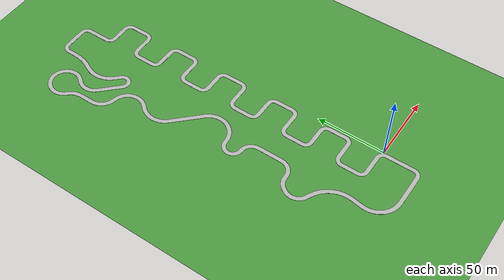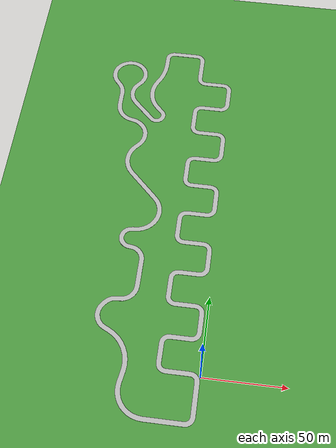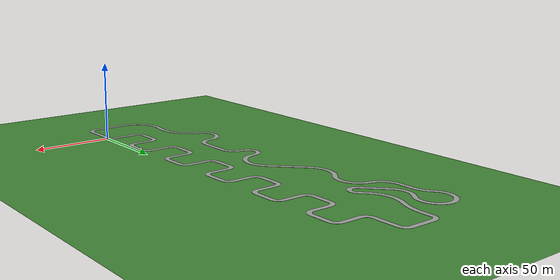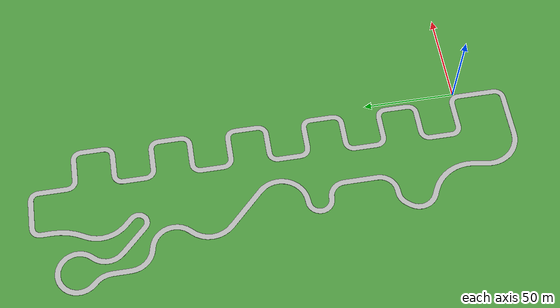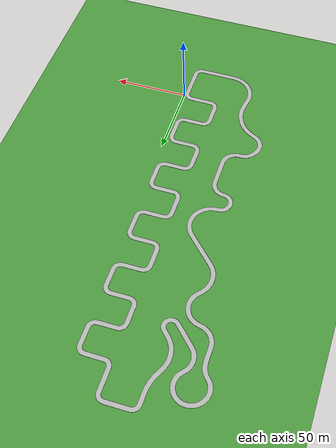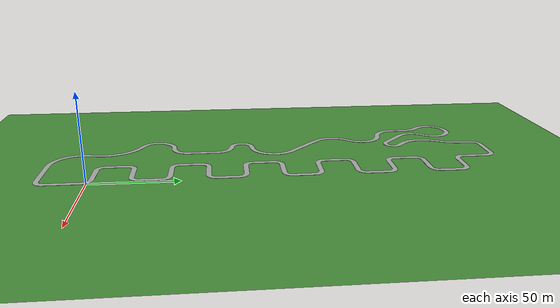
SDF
<sdf version="1.4">
 <world name="default">
  <light name="sun" type="directional">
   <pose>0 0 10 0 -0 0</pose>
   <diffuse>0.8 0.8 0.8 1</diffuse>
   <specular>0.2 0.2 0.2 1</specular>
   <attenuation>
    <range>10000</range>
    <constant>0.9</constant>
    <linear>0.01</linear>
    <quadratic>0.001</quadratic>
   </attenuation>
   <direction>-0.5 0.1 -0.9</direction>
  </light>
  <model name="ground_plane">
   <static>1</static>
   <link name="link">
    <collision name="collision">
     <geometry><plane><normal>0 0 1</normal><size>10000 10000</size></plane></geometry>
     <surface><friction><ode><mu>100</mu><mu2>50</mu2></ode></friction></surface>
    </collision>
    <visual name="visual">
     <cast_shadows>0</cast_shadows>
     <geometry><plane><normal>0 0 1</normal><size>10000 10000</size></plane></geometry>
     <material>
      <script>
       <uri>model://ds_grass_background/materials/scripts</uri>
       <uri>model://ds_grass_background/materials/textures</uri>
       <name>GrassBackground</name>
      </script>
     </material>
    </visual>
    <velocity_decay><linear>0</linear><angular>0</angular></velocity_decay>
   </link>
  </model>
  <physics type="ode">
   <max_step_size>0.001</max_step_size>
   <real_time_factor>1</real_time_factor>
   <real_time_update_rate>1000</real_time_update_rate>
   <gravity>0 0 -9.8</gravity>
  </physics>
  <scene>
   <ambient>0.4 0.4 0.4 1</ambient>
   <background>0.7 0.7 0.7 1</background>
   <shadows>1</shadows>
   <grid>0</grid>
  </scene>
  <spherical_coordinates>
   <surface_model>EARTH_WGS84</surface_model>
   <latitude_deg>0</latitude_deg>
   <longitude_deg>0</longitude_deg>
   <elevation>0</elevation>
   <heading_deg>0</heading_deg>
  </spherical_coordinates>
  <model name="(DS) Autodrive">
   <static>1</static>
   <link name="link">
    <collision name="collision">
     <geometry><mesh><uri>model://ds_autodrive/meshes/track.dae</uri></mesh></geometry>
    </collision>
    <visual name="visual">
     <geometry><mesh><uri>model://ds_autodrive/meshes/track.dae</uri></mesh></geometry>
    </visual>
   </link>
   <pose>0 0 0 0 0 1.5707</pose>
  </model>
 </world>
</sdf>
